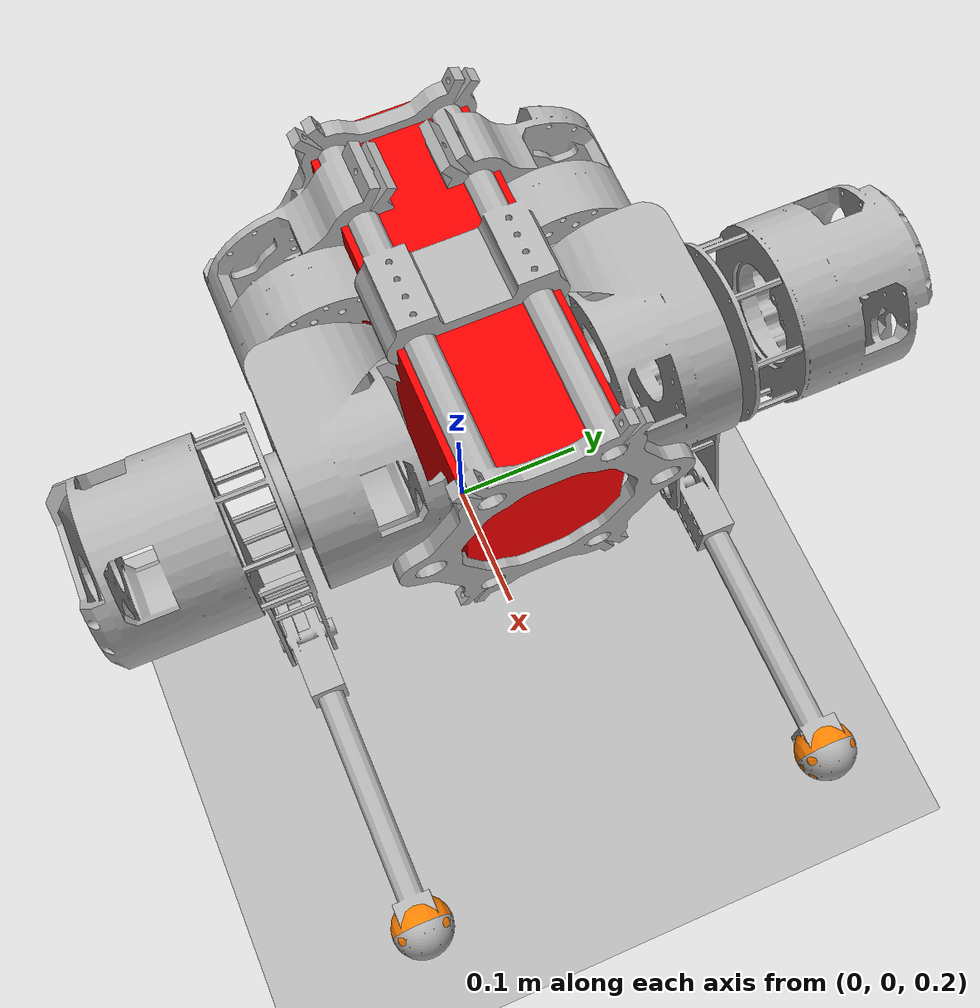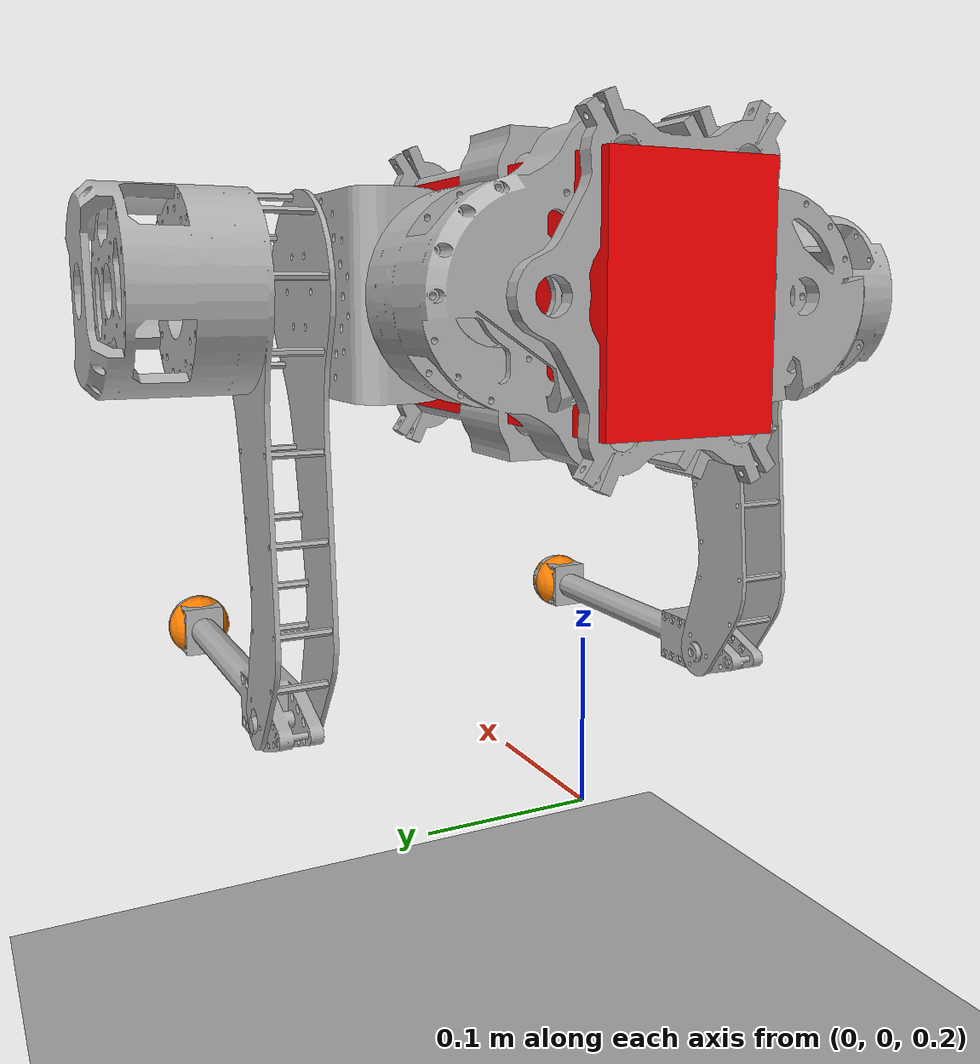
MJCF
<mujoco model="test9_clean">
  <compiler angle="radian" meshdir="meshes/"/>
  <option timestep="0.002" integrator="RK4" gravity="0 0 -9.81"/>

  <asset>
    <mesh name="base_link" file="base_link.STL"/>
    <mesh name="roll_right" file="roll_right.STL"/>
    <mesh name="thigh_right" file="thigh_right.STL"/>
    <mesh name="knee_right" file="knee_right.STL"/>
    <mesh name="roll_left" file="roll_left.STL"/>
    <mesh name="thigh_left" file="thigh_left.STL"/>
    <mesh name="knee_left" file="knee_left.STL"/>
    <material name="visual_mat" rgba="0.7 0.7 0.7 1"/>
  </asset>

  <default>
    <geom type="mesh" contype="0" conaffinity="0" material="visual_mat"/>
    <joint damping="0.1" frictionloss="0.05" armature="0.01"/>
  </default>

  <contact>
    <exclude body1="base_link" body2="thigh_right"/>
    <exclude body1="base_link" body2="knee_right"/>
    <exclude body1="base_link" body2="thigh_left"/>
    <exclude body1="base_link" body2="knee_left"/>
    <exclude body1="roll_right" body2="knee_right"/>
    <exclude body1="roll_left" body2="knee_left"/>
    <exclude body1="thigh_right" body2="thigh_left"/>
    <exclude body1="knee_right" body2="knee_left"/>
    <exclude body1="roll_right" body2="roll_left"/>
    <exclude body1="thigh_right" body2="roll_left"/>
    <exclude body1="thigh_left" body2="roll_right"/>
  </contact>

  <worldbody>
    <light pos="0 0 3" dir="0 0 -1" directional="true" diffuse="0.8 0.8 0.8"/>
    <geom name="floor" type="plane" size="5 5 0.05" rgba="0.5 0.5 0.5 1" contype="1" conaffinity="1"/>

    <body name="base_link" pos="0 0 0.5">
      <freejoint name="root"/>
      <inertial pos="-0.0063 0 0" mass="1.5954" diaginertia="0.0043 0.0033 0.0029"/>
      <geom mesh="base_link"/>
      <geom type="box" size="0.125 0.05 0.07" pos="0.022 0 0" rgba="1 0 0 1" contype="1" conaffinity="1"/>

      <body name="roll_right" pos="0 -0.075 0" quat="0.5 0.5 -0.5 -0.5">
        <inertial pos="0.0217 0 -0.0556" mass="0.5509" diaginertia="0.0012 0.0007 0.0007"/>
        <joint name="hip1r" axis="0 0 -1" range="-3.14 3.14"/>
        <geom mesh="roll_right"/>
        <geom type="cylinder" size="0.04 0.04" pos="0.02 0 -0.05" rgba="0 0 0 0" contype="1" conaffinity="1"/>

        <body name="thigh_right" pos="0.0655 0 -0.0805" quat="0.5 0.5 0.5 0.5">
          <inertial pos="-0.0439 0.0049 0.0427" mass="0.6381" diaginertia="0.0032 0.0027 0.0005"/>
          <joint name="hip2r" axis="0 0 1" range="-3.14 3.14"/>
          <geom mesh="thigh_right"/>
          <geom type="capsule" size="0.035 0.125" pos="-0.125 0 0.01" quat="0.707107 0 0.707107 0" rgba="0 0 0 0" contype="1" conaffinity="1"/>

          <body name="knee_right" pos="-0.25 0 0.018" quat="0.7071 0 0 -0.7071">
            <inertial pos="0.0891 0 0" mass="0.1492" diaginertia="0.0001 0.0001 0.0001"/>
            <joint name="hip3r" axis="0 0 1" range="-3.14 3.14"/>
            <geom mesh="knee_right"/>
            <geom type="capsule" size="0.012 0.08" pos="0.115 0 0" quat="0.707107 0 0.707107 0" rgba="0 0 0 0" contype="1" conaffinity="1"/>

            <geom name="contact_foot_r" type="sphere" size="0.02241" pos="0.23 0 0" rgba="1 0.5 0 1" contype="1" conaffinity="1" friction="1 0.005 0.0001"/>
          </body>
        </body>
      </body>

      <body name="roll_left" pos="0 0.075 0" quat="0.5 0.5 0.5 0.5">
        <inertial pos="0.0217 0 0.0556" mass="0.5509" diaginertia="0.0012 0.0007 0.0007"/>
        <joint name="hip1l" axis="0 0 1" range="-3.14 3.14"/>
        <geom mesh="roll_left"/>
        <geom type="cylinder" size="0.04 0.04" pos="0.02 0 0.05" rgba="0 0 0 0" contype="1" conaffinity="1"/>

        <body name="thigh_left" pos="0.0655 0 0.0805" quat="0.5 0.5 -0.5 -0.5">
          <inertial pos="0.0414 -0.0049 -0.0427" mass="0.6381" diaginertia="0.0032 0.0028 0.0005"/>
          <joint name="hip2l" axis="0 0 -1" range="-3.14 3.14"/>
          <geom mesh="thigh_left"/>
          <geom type="capsule" size="0.035 0.125" pos="0.125 0 -0.01" quat="0.707107 0 0.707107 0" rgba="0 0 0 0" contype="1" conaffinity="1"/>

          <body name="knee_left" pos="0.25 0 -0.018" quat="0.7071 0 0 0.7071">
            <inertial pos="0.0891 0 0" mass="0.1492" diaginertia="0.0001 0.0001 0.0001"/>
            <joint name="hip3l" axis="0 0 -1" range="-3.14 3.14"/>
            <geom mesh="knee_left"/>
            <geom type="capsule" size="0.012 0.08" pos="0.115 0 0" quat="0.707107 0 0.707107 0" rgba="0 0 0 0" contype="1" conaffinity="1"/>

            <geom name="contact_foot_l" type="sphere" size="0.02241" pos="0.23 0 0" rgba="1 0.5 0 1" contype="1" conaffinity="1" friction="1 0.005 0.0001"/>
          </body>
        </body>
      </body>

    </body>
  </worldbody>

  <actuator>
    <position joint="hip1r" name="pos_hip1r" kp="40" kv="2.0" ctrllimited="true" ctrlrange="-0.5 0.5"/>
    <position joint="hip2r" name="pos_hip2r" kp="40" kv="2.0" ctrllimited="true" ctrlrange="-3.14 3.14"/>
    <position joint="hip3r" name="pos_hip3r" kp="40" kv="2.0" ctrllimited="true" ctrlrange="-1 1.2"/>
    <position joint="hip1l" name="pos_hip1l" kp="40" kv="2.0" ctrllimited="true" ctrlrange="-0.5 0.5"/>
    <position joint="hip2l" name="pos_hip2l" kp="40" kv="2.0" ctrllimited="true" ctrlrange="-3.14 3.14"/>
    <position joint="hip3l" name="pos_hip3l" kp="40" kv="2.0" ctrllimited="true" ctrlrange="-1 1.2"/>
  </actuator>
</mujoco>
